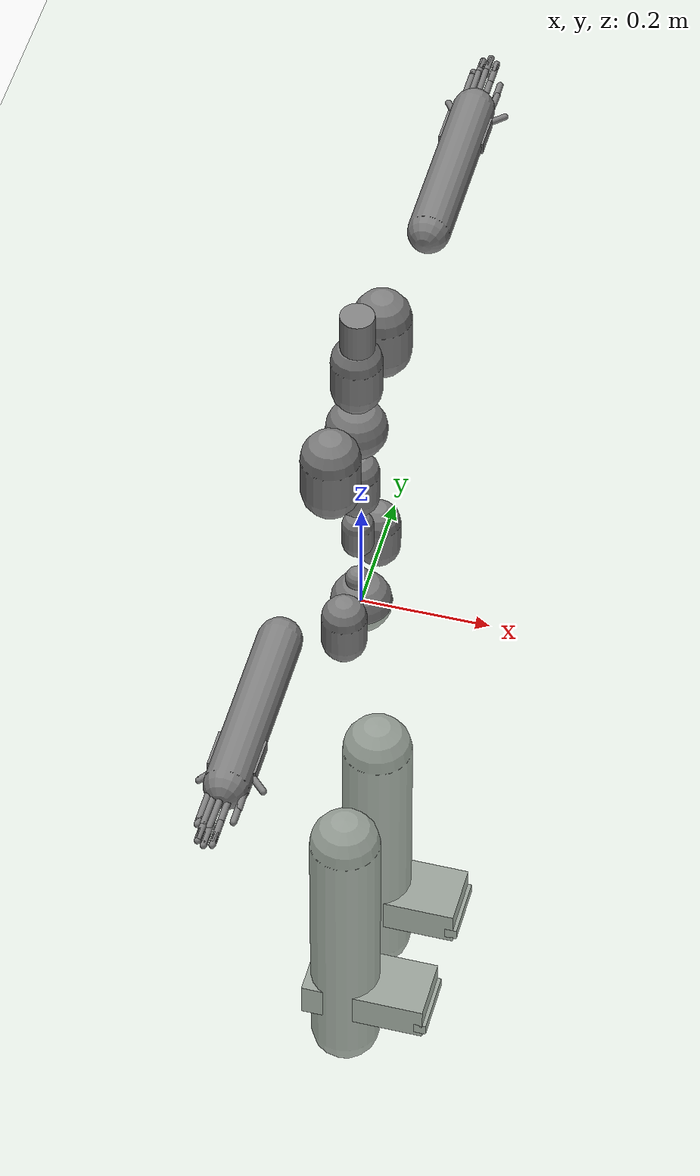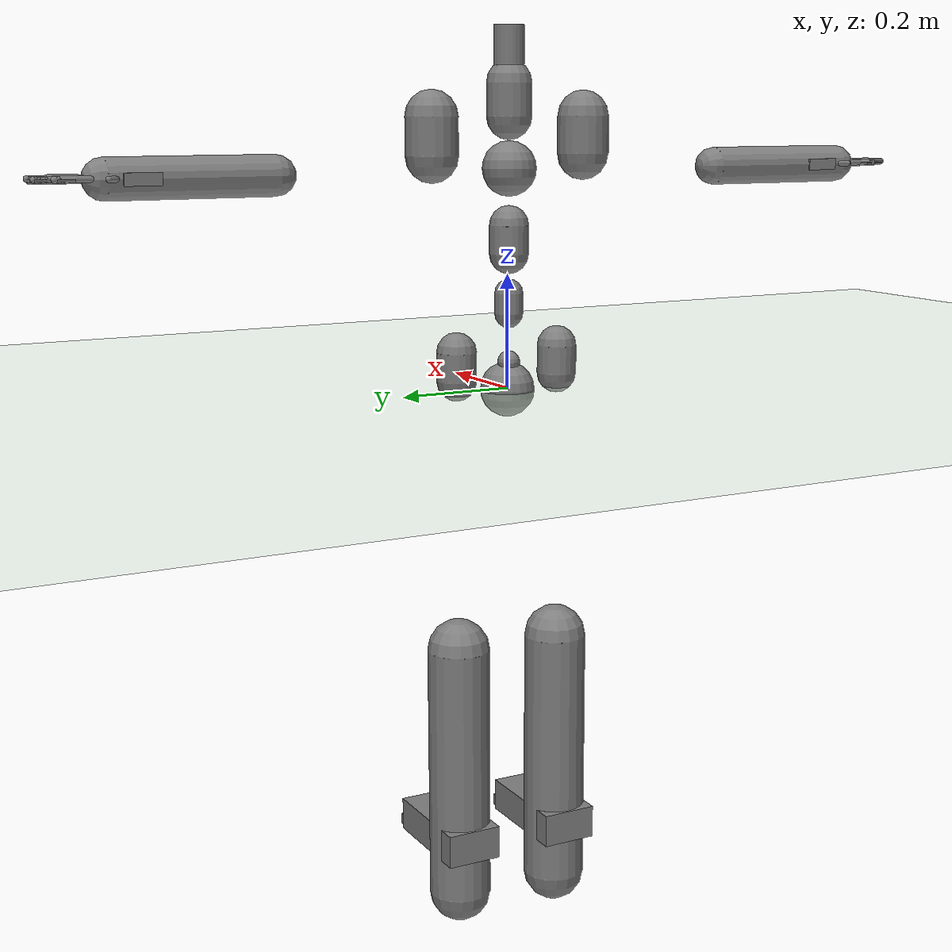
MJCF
<?xml version="1.0" ?>
<mujoco model="humanoid">
  <compiler coordinate="local"/>
  <statistic extent="2" center="0 0 1"/>
  <option timestep="0.00555"/>
  <default>
    <motor ctrlrange="-1 1" ctrllimited="true"/>
    <geom type="capsule" condim="1" friction="1.0 0.05 0.05" solimp=".9 .99 .003" solref=".015 1"/>
    <joint type="hinge" damping="0.1" stiffness="5" armature=".007" limited="true" solimplimit="0 .99 .01"/>
    <site size=".04" group="3"/>
  </default>
  <asset>
    <texture type="skybox" builtin="gradient" rgb1=".4 .5 .6" rgb2="0 0 0" width="100" height="100"/>
    <texture builtin="flat" height="1278" mark="cross" markrgb="1 1 1" name="texgeom" random="0.01" rgb1="0.8 0.6 0.4" rgb2="0.8 0.6 0.4" type="cube" width="127"/>
    <texture builtin="checker" height="100" name="texplane" rgb1="0 0 0" rgb2="0.8 0.8 0.8" type="2d" width="100"/>
    <material name="MatPlane" reflectance="0.5" shininess="1" specular="1" texrepeat="60 60" texture="texplane"/>
    <material name="geom" texture="texgeom" texuniform="true"/>
  </asset>
  <worldbody>
    <light cutoff="100" diffuse="1 1 1" dir="-0 0 -1.3" directional="true" exponent="1" pos="0 0 1.3" specular=".1 .1 .1"/>
    <geom conaffinity="1" condim="3" name="floor" pos="0 0 0" rgba="0.8 0.9 0.8 1" size="100 100 .2" type="plane" material="MatPlane"/>
    <body name="pHipOrigin" pos="0 0 0">
      <freejoint name="pHipOrigin"/>
      <geom type="sphere" contype="1" conaffinity="1" density="4629.6296296296305" size="0.04789" pos="0.0000 0.0000 -0.0000"/>
      <body name="jL5S1" pos="-0.00539612 0 0.04856495">
        <geom type="sphere" contype="1" conaffinity="1" density="1000" size="0.01955" pos="0 0 0"/>
        <joint name="jL5S1_x" type="hinge" pos="0 0 0" axis="1 0 0" stiffness="500" damping="500" armature="0.02" range="-180.0000 180.0000"/>
        <joint name="jL5S1_y" type="hinge" pos="0 0 0" axis="0 1 0" stiffness="500" damping="500" armature="0.02" range="-180.0000 180.0000"/>
        <joint name="jL5S1_z" type="hinge" pos="0 0 0" axis="0 0 1" stiffness="500" damping="500" armature="0.02" range="-180.0000 180.0000"/>
        <body name="jL4L3" pos="0 0 0.07050699">
          <geom type="capsule" contype="1" conaffinity="1" density="1000" fromto="0 0 0.01410 0 0 0.04935" size="0.02468"/>
          <joint name="jL4L3_x" type="hinge" pos="0 0 0" axis="1 0 0" stiffness="500" damping="500" armature="0.02" range="-180.0000 180.0000"/>
          <joint name="jL4L3_y" type="hinge" pos="0 0 0" axis="0 1 0" stiffness="500" damping="500" armature="0.02" range="-180.0000 180.0000"/>
          <joint name="jL4L3_z" type="hinge" pos="0 0 0" axis="0 0 1" stiffness="500" damping="500" armature="0.02" range="-180.0000 180.0000"/>
          <body name="jL1T12" pos="-0.00075170 0 0.09743356">
            <geom type="capsule" contype="1" conaffinity="1" density="1000" fromto="0 0 0.01949 0 0 0.06821" size="0.03410"/>
            <joint name="jL1T12_x" type="hinge" pos="0 0 0" axis="1 0 0" stiffness="500" damping="500" armature="0.02" range="-180.0000 180.0000"/>
            <joint name="jL1T12_y" type="hinge" pos="0 0 0" axis="0 1 0" stiffness="500" damping="500" armature="0.02" range="-180.0000 180.0000"/>
            <joint name="jL1T12_z" type="hinge" pos="0 0 0" axis="0 0 1" stiffness="500" damping="500" armature="0.02" range="-180.0000 180.0000"/>
            <body name="jT9T8" pos="-0.00090596 0 0.11720059">
              <geom type="sphere" contype="1" conaffinity="1" density="1000" size="0.04688" pos="0.000 0.0000 0.046882"/>
              <joint name="jT9T8_x" type="hinge" pos="0 0 0" axis="1 0 0" stiffness="500" damping="500" armature="0.02" range="-180.0000 180.0000"/>
              <joint name="jT9T8_y" type="hinge" pos="0 0 0" axis="0 1 0" stiffness="500" damping="500" armature="0.02" range="-180.0000 180.0000"/>
              <joint name="jT9T8_z" type="hinge" pos="0 0 0" axis="0 0 1" stiffness="500" damping="500" armature="0.02" range="-180.0000 180.0000"/>
              <body name="jT1C7" pos="0 0 0.11110699">
                <geom type="capsule" contype="1" conaffinity="1" density="1000" fromto="0 0 0.02222 0 0 0.07777" size="0.03889"/>
                <joint name="jT1C7_x" type="hinge" pos="0 0 0" axis="1 0 0" stiffness="500" damping="500" armature="0.02" range="-180.0000 180.0000"/>
                <joint name="jT1C7_y" type="hinge" pos="0 0 0" axis="0 1 0" stiffness="500" damping="500" armature="0.02" range="-180.0000 180.0000"/>
                <joint name="jT1C7_z" type="hinge" pos="0 0 0" axis="0 0 1" stiffness="500" damping="500" armature="0.02" range="-180.0000 180.0000"/>
                <body name="jC1Head" pos="0.00101381 0 0.08593361">
                  <geom type="cylinder" contype="1" conaffinity="1" density="1000" fromto="0 0 0 0 0 0.08594" size="0.02578"/>
                  <joint name="jC1Head_x" type="hinge" pos="0 0 0" axis="1 0 0" stiffness="500" damping="500" armature="0.02" range="-180.0000 180.0000"/>
                  <joint name="jC1Head_y" type="hinge" pos="0 0 0" axis="0 1 0" stiffness="500" damping="500" armature="0.02" range="-180.0000 180.0000"/>
                  <joint name="jC1Head_z" type="hinge" pos="0 0 0" axis="0 0 1" stiffness="500" damping="500" armature="0.02" range="-180.0000 180.0000"/>
                </body>
              </body>
              <body name="jRightT4Shoulder" pos="0 -0.01808778 0.04410198">
                <geom type="sphere" contype="1" conaffinity="1" density="1000" size="0.01907" pos="0 0 0"/>
                <joint name="jRightT4Shoulder_x" type="hinge" pos="0 0 0" axis="1 0 0" stiffness="500" damping="500" armature="0.02" range="-180.0000 180.0000"/>
                <joint name="jRightT4Shoulder_y" type="hinge" pos="0 0 0" axis="0 1 0" stiffness="500" damping="500" armature="0.02" range="-180.0000 180.0000"/>
                <joint name="jRightT4Shoulder_z" type="hinge" pos="0 0 0" axis="0 0 1" stiffness="500" damping="500" armature="0.02" range="-180.0000 180.0000"/>
                <body name="jRightShoulder" pos="0 -0.12744974 0">
                  <geom type="capsule" contype="1" conaffinity="1" density="1000" fromto="0 0 0.02549 0 0 0.08921" size="0.04461"/>
                  <joint name="jRightShoulder_x" type="hinge" pos="0 0 0" axis="1 0 0" stiffness="500" damping="500" armature="0.02" range="-180.0000 180.0000"/>
                  <joint name="jRightShoulder_y" type="hinge" pos="0 0 0" axis="0 1 0" stiffness="500" damping="500" armature="0.02" range="-180.0000 180.0000"/>
                  <joint name="jRightShoulder_z" type="hinge" pos="0 0 0" axis="0 0 1" stiffness="500" damping="500" armature="0.02" range="-180.0000 180.0000"/>
                  <body name="jRightElbow" pos="0 -0.27682194 0">
                    <geom type="capsule" contype="1" conaffinity="1" density="1000" fromto="0 0 0 0.00000000 -0.27682194 0.00000000" size="0.03322"/>
                    <joint name="jRightElbow_x" type="hinge" pos="0 0 0" axis="1 0 0" stiffness="500" damping="500" armature="0.02" range="-180.0000 180.0000"/>
                    <joint name="jRightElbow_y" type="hinge" pos="0 0 0" axis="0 1 0" stiffness="500" damping="500" armature="0.02" range="-180.0000 180.0000"/>
                    <joint name="jRightElbow_z" type="hinge" pos="0 0 0" axis="0 0 1" stiffness="500" damping="500" armature="0.02" range="-180.0000 180.0000"/>
                    <body name="jRightWrist" pos="0.00008965 -0.22274684 0">
                      <geom density="1000" type="box" pos="0 0 0" size="0.035 0.03 0.01" quat="1.0000 0.0000 0.0000 0.0000"/>
                      <joint name="jRightWrist_x" type="hinge" pos="0 0 0" axis="1 0 0" stiffness="500" damping="500" armature="0.02" range="-180.0000 180.0000"/>
                      <joint name="jRightWrist_y" type="hinge" pos="0 0 0" axis="0 1 0" stiffness="500" damping="500" armature="0.02" range="-180.0000 180.0000"/>
                      <joint name="jRightWrist_z" type="hinge" pos="0 0 0" axis="0 0 1" stiffness="500" damping="500" armature="0.02" range="-180.0000 180.0000"/>
                      <body name="jRightFirstCMC" pos="0.02569193 -0.02462716 -0.00116349">
                        <geom type="capsule" contype="1" conaffinity="1" density="1000" fromto="0 0 0 0.02569193 -0.02462716 -0.00116349" size="0.005"/>
                        <joint name="jRightFirstCMC_x" type="hinge" pos="0 0 0" axis="1 0 0" stiffness="500" damping="500" armature="0.02" range="-180.0000 180.0000"/>
                        <joint name="jRightFirstCMC_y" type="hinge" pos="0 0 0" axis="0 1 0" stiffness="500" damping="500" armature="0.02" range="-180.0000 180.0000"/>
                        <joint name="jRightFirstCMC_z" type="hinge" pos="0 0 0" axis="0 0 1" stiffness="500" damping="500" armature="0.02" range="-180.0000 180.0000"/>
                        <body name="jRightFirstMCP" pos="0.00114762 -0.03238511 0.00068430">
                          <geom type="capsule" contype="1" conaffinity="1" density="1000" fromto="0 0 0 0.00114762 -0.03238511 0.00068430" size="0.005"/>
                          <joint name="jRightFirstMCP_x" type="hinge" pos="0 0 0" axis="1 0 0" stiffness="500" damping="500" armature="0.02" range="-180.0000 180.0000"/>
                          <joint name="jRightFirstMCP_y" type="hinge" pos="0 0 0" axis="0 1 0" stiffness="500" damping="500" armature="0.02" range="-180.0000 180.0000"/>
                          <joint name="jRightFirstMCP_z" type="hinge" pos="0 0 0" axis="0 0 1" stiffness="500" damping="500" armature="0.02" range="-180.0000 180.0000"/>
                          <body name="jRightIP" pos="0 -0.02849463 0">
                            <geom type="capsule" contype="1" conaffinity="1" density="1000" fromto="0 0 0 0.00000000 -0.02849463 0.00000000" size="0.005"/>
                            <joint name="jRightIP_x" type="hinge" pos="0 0 0" axis="1 0 0" stiffness="500" damping="500" armature="0.02" range="-180.0000 180.0000"/>
                            <joint name="jRightIP_y" type="hinge" pos="0 0 0" axis="0 1 0" stiffness="500" damping="500" armature="0.02" range="-180.0000 180.0000"/>
                            <joint name="jRightIP_z" type="hinge" pos="0 0 0" axis="0 0 1" stiffness="500" damping="500" armature="0.02" range="-180.0000 180.0000"/>
                          </body>
                        </body>
                      </body>
                      <body name="jRightSecondCMC" pos="0.00978196 -0.02857979 -0.00049850">
                        <geom type="capsule" contype="1" conaffinity="1" density="1000" fromto="0 0 0 0.00978196 -0.02857979 -0.00049850" size="0.005"/>
                        <joint name="jRightSecondCMC_x" type="hinge" pos="0 0 0" axis="1 0 0" stiffness="500" damping="500" armature="0.02" range="-180.0000 180.0000"/>
                        <joint name="jRightSecondCMC_y" type="hinge" pos="0 0 0" axis="0 1 0" stiffness="500" damping="500" armature="0.02" range="-180.0000 180.0000"/>
                        <joint name="jRightSecondCMC_z" type="hinge" pos="0 0 0" axis="0 0 1" stiffness="500" damping="500" armature="0.02" range="-180.0000 180.0000"/>
                        <body name="jRightSecondMCP" pos="-0.00032767 -0.05226028 -0.00054211">
                          <geom type="capsule" contype="1" conaffinity="1" density="1000" fromto="0 0 0 -0.00032767 -0.05226028 -0.00054211" size="0.005"/>
                          <joint name="jRightSecondMCP_x" type="hinge" pos="0 0 0" axis="1 0 0" stiffness="500" damping="500" armature="0.02" range="-180.0000 180.0000"/>
                          <joint name="jRightSecondMCP_y" type="hinge" pos="0 0 0" axis="0 1 0" stiffness="500" damping="500" armature="0.02" range="-180.0000 180.0000"/>
                          <joint name="jRightSecondMCP_z" type="hinge" pos="0 0 0" axis="0 0 1" stiffness="500" damping="500" armature="0.02" range="-180.0000 180.0000"/>
                          <body name="jRightSecondPIP" pos="0 -0.03785470 0">
                            <geom type="capsule" contype="1" conaffinity="1" density="1000" fromto="0 0 0 0.00000000 -0.03785470 0.00000000" size="0.005"/>
                            <joint name="jRightSecondPIP_x" type="hinge" pos="0 0 0" axis="1 0 0" stiffness="500" damping="500" armature="0.02" range="-180.0000 180.0000"/>
                            <joint name="jRightSecondPIP_y" type="hinge" pos="0 0 0" axis="0 1 0" stiffness="500" damping="500" armature="0.02" range="-180.0000 180.0000"/>
                            <joint name="jRightSecondPIP_z" type="hinge" pos="0 0 0" axis="0 0 1" stiffness="500" damping="500" armature="0.02" range="-180.0000 180.0000"/>
                            <body name="jRightSecondDIP" pos="0 -0.02065061 0">
                              <geom type="capsule" contype="1" conaffinity="1" density="1000" fromto="0 0 0 0.00000000 -0.02065061 0.00000000" size="0.005"/>
                              <joint name="jRightSecondDIP_x" type="hinge" pos="0 0 0" axis="1 0 0" stiffness="500" damping="500" armature="0.02" range="-180.0000 180.0000"/>
                              <joint name="jRightSecondDIP_y" type="hinge" pos="0 0 0" axis="0 1 0" stiffness="500" damping="500" armature="0.02" range="-180.0000 180.0000"/>
                              <joint name="jRightSecondDIP_z" type="hinge" pos="0 0 0" axis="0 0 1" stiffness="500" damping="500" armature="0.02" range="-180.0000 180.0000"/>
                            </body>
                          </body>
                        </body>
                      </body>
                      <body name="jRightThirdCMC" pos="-0.00061072 -0.03302631 0.00138848">
                        <geom type="capsule" contype="1" conaffinity="1" density="1000" fromto="0 0 0 -0.00061072 -0.03302631 0.00138848" size="0.005"/>
                        <joint name="jRightThirdCMC_x" type="hinge" pos="0 0 0" axis="1 0 0" stiffness="500" damping="500" armature="0.02" range="-180.0000 180.0000"/>
                        <joint name="jRightThirdCMC_y" type="hinge" pos="0 0 0" axis="0 1 0" stiffness="500" damping="500" armature="0.02" range="-180.0000 180.0000"/>
                        <joint name="jRightThirdCMC_z" type="hinge" pos="0 0 0" axis="0 0 1" stiffness="500" damping="500" armature="0.02" range="-180.0000 180.0000"/>
                        <body name="jRightThirdMCP" pos="-0.00061190 -0.05069596 0.00137924">
                          <geom type="capsule" contype="1" conaffinity="1" density="1000" fromto="0 0 0 -0.00061190 -0.05069596 0.00137924" size="0.005"/>
                          <joint name="jRightThirdMCP_x" type="hinge" pos="0 0 0" axis="1 0 0" stiffness="500" damping="500" armature="0.02" range="-180.0000 180.0000"/>
                          <joint name="jRightThirdMCP_y" type="hinge" pos="0 0 0" axis="0 1 0" stiffness="500" damping="500" armature="0.02" range="-180.0000 180.0000"/>
                          <joint name="jRightThirdMCP_z" type="hinge" pos="0 0 0" axis="0 0 1" stiffness="500" damping="500" armature="0.02" range="-180.0000 180.0000"/>
                          <body name="jRightThirdPIP" pos="0 -0.04145038 0">
                            <geom type="capsule" contype="1" conaffinity="1" density="1000" fromto="0 0 0 0.00000000 -0.04145038 0.00000000" size="0.005"/>
                            <joint name="jRightThirdPIP_x" type="hinge" pos="0 0 0" axis="1 0 0" stiffness="500" damping="500" armature="0.02" range="-180.0000 180.0000"/>
                            <joint name="jRightThirdPIP_y" type="hinge" pos="0 0 0" axis="0 1 0" stiffness="500" damping="500" armature="0.02" range="-180.0000 180.0000"/>
                            <joint name="jRightThirdPIP_z" type="hinge" pos="0 0 0" axis="0 0 1" stiffness="500" damping="500" armature="0.02" range="-180.0000 180.0000"/>
                            <body name="jRightThirdDIP" pos="0 -0.01991758 0">
                              <geom type="capsule" contype="1" conaffinity="1" density="1000" fromto="0 0 0 0.00000000 -0.01991758 0.00000000" size="0.005"/>
                              <joint name="jRightThirdDIP_x" type="hinge" pos="0 0 0" axis="1 0 0" stiffness="500" damping="500" armature="0.02" range="-180.0000 180.0000"/>
                              <joint name="jRightThirdDIP_y" type="hinge" pos="0 0 0" axis="0 1 0" stiffness="500" damping="500" armature="0.02" range="-180.0000 180.0000"/>
                              <joint name="jRightThirdDIP_z" type="hinge" pos="0 0 0" axis="0 0 1" stiffness="500" damping="500" armature="0.02" range="-180.0000 180.0000"/>
                            </body>
                          </body>
                        </body>
                      </body>
                      <body name="jRightFourthCMC" pos="-0.01124740 -0.03132588 0.00073736">
                        <geom type="capsule" contype="1" conaffinity="1" density="1000" fromto="0 0 0 -0.01124740 -0.03132588 0.00073736" size="0.005"/>
                        <joint name="jRightFourthCMC_x" type="hinge" pos="0 0 0" axis="1 0 0" stiffness="500" damping="500" armature="0.02" range="-180.0000 180.0000"/>
                        <joint name="jRightFourthCMC_y" type="hinge" pos="0 0 0" axis="0 1 0" stiffness="500" damping="500" armature="0.02" range="-180.0000 180.0000"/>
                        <joint name="jRightFourthCMC_z" type="hinge" pos="0 0 0" axis="0 0 1" stiffness="500" damping="500" armature="0.02" range="-180.0000 180.0000"/>
                        <body name="jRightFourthMCP" pos="-0.00035896 -0.04919920 0.00077296">
                          <geom type="capsule" contype="1" conaffinity="1" density="1000" fromto="0 0 0 -0.00035896 -0.04919920 0.00077296" size="0.005"/>
                          <joint name="jRightFourthMCP_x" type="hinge" pos="0 0 0" axis="1 0 0" stiffness="500" damping="500" armature="0.02" range="-180.0000 180.0000"/>
                          <joint name="jRightFourthMCP_y" type="hinge" pos="0 0 0" axis="0 1 0" stiffness="500" damping="500" armature="0.02" range="-180.0000 180.0000"/>
                          <joint name="jRightFourthMCP_z" type="hinge" pos="0 0 0" axis="0 0 1" stiffness="500" damping="500" armature="0.02" range="-180.0000 180.0000"/>
                          <body name="jRightFourthPIP" pos="0 -0.03932637 0">
                            <geom type="capsule" contype="1" conaffinity="1" density="1000" fromto="0 0 0 0.00000000 -0.03932637 0.00000000" size="0.005"/>
                            <joint name="jRightFourthPIP_x" type="hinge" pos="0 0 0" axis="1 0 0" stiffness="500" damping="500" armature="0.02" range="-180.0000 180.0000"/>
                            <joint name="jRightFourthPIP_y" type="hinge" pos="0 0 0" axis="0 1 0" stiffness="500" damping="500" armature="0.02" range="-180.0000 180.0000"/>
                            <joint name="jRightFourthPIP_z" type="hinge" pos="0 0 0" axis="0 0 1" stiffness="500" damping="500" armature="0.02" range="-180.0000 180.0000"/>
                            <body name="jRightFourthDIP" pos="0 -0.01977272 0">
                              <geom type="capsule" contype="1" conaffinity="1" density="1000" fromto="0 0 0 0.00000000 -0.01977272 0.00000000" size="0.005"/>
                              <joint name="jRightFourthDIP_x" type="hinge" pos="0 0 0" axis="1 0 0" stiffness="500" damping="500" armature="0.02" range="-180.0000 180.0000"/>
                              <joint name="jRightFourthDIP_y" type="hinge" pos="0 0 0" axis="0 1 0" stiffness="500" damping="500" armature="0.02" range="-180.0000 180.0000"/>
                              <joint name="jRightFourthDIP_z" type="hinge" pos="0 0 0" axis="0 0 1" stiffness="500" damping="500" armature="0.02" range="-180.0000 180.0000"/>
                            </body>
                          </body>
                        </body>
                      </body>
                      <body name="jRightFifthCMC" pos="-0.01980955 -0.02760235 0.00054451">
                        <geom type="capsule" contype="1" conaffinity="1" density="1000" fromto="0 0 0 -0.01980955 -0.02760235 0.00054451" size="0.005"/>
                        <joint name="jRightFifthCMC_x" type="hinge" pos="0 0 0" axis="1 0 0" stiffness="500" damping="500" armature="0.02" range="-180.0000 180.0000"/>
                        <joint name="jRightFifthCMC_y" type="hinge" pos="0 0 0" axis="0 1 0" stiffness="500" damping="500" armature="0.02" range="-180.0000 180.0000"/>
                        <joint name="jRightFifthCMC_z" type="hinge" pos="0 0 0" axis="0 0 1" stiffness="500" damping="500" armature="0.02" range="-180.0000 180.0000"/>
                        <body name="jRightFifthMCP" pos="-0.00000690 -0.04672116 0.00064294">
                          <geom type="capsule" contype="1" conaffinity="1" density="1000" fromto="0 0 0 -0.00000690 -0.04672116 0.00064294" size="0.005"/>
                          <joint name="jRightFifthMCP_x" type="hinge" pos="0 0 0" axis="1 0 0" stiffness="500" damping="500" armature="0.02" range="-180.0000 180.0000"/>
                          <joint name="jRightFifthMCP_y" type="hinge" pos="0 0 0" axis="0 1 0" stiffness="500" damping="500" armature="0.02" range="-180.0000 180.0000"/>
                          <joint name="jRightFifthMCP_z" type="hinge" pos="0 0 0" axis="0 0 1" stiffness="500" damping="500" armature="0.02" range="-180.0000 180.0000"/>
                          <body name="jRightFifthPIP" pos="0 -0.02657274 0">
                            <geom type="capsule" contype="1" conaffinity="1" density="1000" fromto="0 0 0 0.00000000 -0.02657274 0.00000000" size="0.005"/>
                            <joint name="jRightFifthPIP_x" type="hinge" pos="0 0 0" axis="1 0 0" stiffness="500" damping="500" armature="0.02" range="-180.0000 180.0000"/>
                            <joint name="jRightFifthPIP_y" type="hinge" pos="0 0 0" axis="0 1 0" stiffness="500" damping="500" armature="0.02" range="-180.0000 180.0000"/>
                            <joint name="jRightFifthPIP_z" type="hinge" pos="0 0 0" axis="0 0 1" stiffness="500" damping="500" armature="0.02" range="-180.0000 180.0000"/>
                            <body name="jRightFifthDIP" pos="0 -0.01515239 0">
                              <geom type="capsule" contype="1" conaffinity="1" density="1000" fromto="0 0 0 0.00000000 -0.01515239 0.00000000" size="0.005"/>
                              <joint name="jRightFifthDIP_x" type="hinge" pos="0 0 0" axis="1 0 0" stiffness="500" damping="500" armature="0.02" range="-180.0000 180.0000"/>
                              <joint name="jRightFifthDIP_y" type="hinge" pos="0 0 0" axis="0 1 0" stiffness="500" damping="500" armature="0.02" range="-180.0000 180.0000"/>
                              <joint name="jRightFifthDIP_z" type="hinge" pos="0 0 0" axis="0 0 1" stiffness="500" damping="500" armature="0.02" range="-180.0000 180.0000"/>
                            </body>
                          </body>
                        </body>
                      </body>
                    </body>
                  </body>
                </body>
              </body>
              <body name="jLeftT4Shoulder" pos="0 0.01802158 0.04394058">
                <geom type="sphere" contype="1" conaffinity="1" density="1000" size="0.01900" pos="0 0 0"/>
                <joint name="jLeftT4Shoulder_x" type="hinge" pos="0 0 0" axis="1 0 0" stiffness="500" damping="500" armature="0.02" range="-180.0000 180.0000"/>
                <joint name="jLeftT4Shoulder_y" type="hinge" pos="0 0 0" axis="0 1 0" stiffness="500" damping="500" armature="0.02" range="-180.0000 180.0000"/>
                <joint name="jLeftT4Shoulder_z" type="hinge" pos="0 0 0" axis="0 0 1" stiffness="500" damping="500" armature="0.02" range="-180.0000 180.0000"/>
                <body name="jLeftShoulder" pos="0 0.12796123 0">
                  <geom type="capsule" contype="1" conaffinity="1" density="1000" fromto="0 0 0.02559 0 0 0.08957" size="0.04479"/>
                  <joint name="jLeftShoulder_x" type="hinge" pos="0 0 0" axis="1 0 0" stiffness="500" damping="500" armature="0.02" range="-180.0000 180.0000"/>
                  <joint name="jLeftShoulder_y" type="hinge" pos="0 0 0" axis="0 1 0" stiffness="500" damping="500" armature="0.02" range="-180.0000 180.0000"/>
                  <joint name="jLeftShoulder_z" type="hinge" pos="0 0 0" axis="0 0 1" stiffness="500" damping="500" armature="0.02" range="-180.0000 180.0000"/>
                  <body name="jLeftElbow" pos="0 0.27616146 0">
                    <geom type="capsule" contype="1" conaffinity="1" density="1000" fromto="0 0 0 0.00000000 0.27616146 0.00000000" size="0.03314"/>
                    <joint name="jLeftElbow_x" type="hinge" pos="0 0 0" axis="1 0 0" stiffness="500" damping="500" armature="0.02" range="-180.0000 180.0000"/>
                    <joint name="jLeftElbow_y" type="hinge" pos="0 0 0" axis="0 1 0" stiffness="500" damping="500" armature="0.02" range="-180.0000 180.0000"/>
                    <joint name="jLeftElbow_z" type="hinge" pos="0 0 0" axis="0 0 1" stiffness="500" damping="500" armature="0.02" range="-180.0000 180.0000"/>
                    <body name="jLeftWrist" pos="0.00009028 0.22430267 0">
                      <geom density="1000" type="box" pos="0 0 0" size="0.035 0.03 0.01" quat="1.0000 0.0000 0.0000 0.0000"/>
                      <joint name="jLeftWrist_x" type="hinge" pos="0 0 0" axis="1 0 0" stiffness="500" damping="500" armature="0.02" range="-180.0000 180.0000"/>
                      <joint name="jLeftWrist_y" type="hinge" pos="0 0 0" axis="0 1 0" stiffness="500" damping="500" armature="0.02" range="-180.0000 180.0000"/>
                      <joint name="jLeftWrist_z" type="hinge" pos="0 0 0" axis="0 0 1" stiffness="500" damping="500" armature="0.02" range="-180.0000 180.0000"/>
                      <body name="jLeftFirstCMC" pos="0.02514635 0.02520573 -0.00112547">
                        <geom type="capsule" contype="1" conaffinity="1" density="1000" fromto="0 0 0 0.02514635 0.02520573 -0.00112547" size="0.005"/>
                        <joint name="jLeftFirstCMC_x" type="hinge" pos="0 0 0" axis="1 0 0" stiffness="500" damping="500" armature="0.02" range="-180.0000 180.0000"/>
                        <joint name="jLeftFirstCMC_y" type="hinge" pos="0 0 0" axis="0 1 0" stiffness="500" damping="500" armature="0.02" range="-180.0000 180.0000"/>
                        <joint name="jLeftFirstCMC_z" type="hinge" pos="0 0 0" axis="0 0 1" stiffness="500" damping="500" armature="0.02" range="-180.0000 180.0000"/>
                        <body name="jLeftFirstMCP" pos="0.00113657 0.03238438 0.00066687">
                          <geom type="capsule" contype="1" conaffinity="1" density="1000" fromto="0 0 0 0.00113657 0.03238438 0.00066687" size="0.005"/>
                          <joint name="jLeftFirstMCP_x" type="hinge" pos="0 0 0" axis="1 0 0" stiffness="500" damping="500" armature="0.02" range="-180.0000 180.0000"/>
                          <joint name="jLeftFirstMCP_y" type="hinge" pos="0 0 0" axis="0 1 0" stiffness="500" damping="500" armature="0.02" range="-180.0000 180.0000"/>
                          <joint name="jLeftFirstMCP_z" type="hinge" pos="0 0 0" axis="0 0 1" stiffness="500" damping="500" armature="0.02" range="-180.0000 180.0000"/>
                          <body name="jLeftIP" pos="0 0.02849463 0">
                            <geom type="capsule" contype="1" conaffinity="1" density="1000" fromto="0 0 0 0.00000000 0.02849463 0.00000000" size="0.005"/>
                            <joint name="jLeftIP_x" type="hinge" pos="0 0 0" axis="1 0 0" stiffness="500" damping="500" armature="0.02" range="-180.0000 180.0000"/>
                            <joint name="jLeftIP_y" type="hinge" pos="0 0 0" axis="0 1 0" stiffness="500" damping="500" armature="0.02" range="-180.0000 180.0000"/>
                            <joint name="jLeftIP_z" type="hinge" pos="0 0 0" axis="0 0 1" stiffness="500" damping="500" armature="0.02" range="-180.0000 180.0000"/>
                          </body>
                        </body>
                      </body>
                      <body name="jLeftSecondCMC" pos="0.00989463 0.02852721 -0.00050262">
                        <geom type="capsule" contype="1" conaffinity="1" density="1000" fromto="0 0 0 0.00989463 0.02852721 -0.00050262" size="0.005"/>
                        <joint name="jLeftSecondCMC_x" type="hinge" pos="0 0 0" axis="1 0 0" stiffness="500" damping="500" armature="0.02" range="-180.0000 180.0000"/>
                        <joint name="jLeftSecondCMC_y" type="hinge" pos="0 0 0" axis="0 1 0" stiffness="500" damping="500" armature="0.02" range="-180.0000 180.0000"/>
                        <joint name="jLeftSecondCMC_z" type="hinge" pos="0 0 0" axis="0 0 1" stiffness="500" damping="500" armature="0.02" range="-180.0000 180.0000"/>
                        <body name="jLeftSecondMCP" pos="-0.00028570 0.05226136 -0.00054881">
                          <geom type="capsule" contype="1" conaffinity="1" density="1000" fromto="0 0 0 -0.00028570 0.05226136 -0.00054881" size="0.005"/>
                          <joint name="jLeftSecondMCP_x" type="hinge" pos="0 0 0" axis="1 0 0" stiffness="500" damping="500" armature="0.02" range="-180.0000 180.0000"/>
                          <joint name="jLeftSecondMCP_y" type="hinge" pos="0 0 0" axis="0 1 0" stiffness="500" damping="500" armature="0.02" range="-180.0000 180.0000"/>
                          <joint name="jLeftSecondMCP_z" type="hinge" pos="0 0 0" axis="0 0 1" stiffness="500" damping="500" armature="0.02" range="-180.0000 180.0000"/>
                          <body name="jLeftSecondPIP" pos="0 0.03785470 0">
                            <geom type="capsule" contype="1" conaffinity="1" density="1000" fromto="0 0 0 0.00000000 0.03785470 0.00000000" size="0.005"/>
                            <joint name="jLeftSecondPIP_x" type="hinge" pos="0 0 0" axis="1 0 0" stiffness="500" damping="500" armature="0.02" range="-180.0000 180.0000"/>
                            <joint name="jLeftSecondPIP_y" type="hinge" pos="0 0 0" axis="0 1 0" stiffness="500" damping="500" armature="0.02" range="-180.0000 180.0000"/>
                            <joint name="jLeftSecondPIP_z" type="hinge" pos="0 0 0" axis="0 0 1" stiffness="500" damping="500" armature="0.02" range="-180.0000 180.0000"/>
                            <body name="jLeftSecondDIP" pos="0 0.02065061 0">
                              <geom type="capsule" contype="1" conaffinity="1" density="1000" fromto="0 0 0 0.00000000 0.02065061 0.00000000" size="0.005"/>
                              <joint name="jLeftSecondDIP_x" type="hinge" pos="0 0 0" axis="1 0 0" stiffness="500" damping="500" armature="0.02" range="-180.0000 180.0000"/>
                              <joint name="jLeftSecondDIP_y" type="hinge" pos="0 0 0" axis="0 1 0" stiffness="500" damping="500" armature="0.02" range="-180.0000 180.0000"/>
                              <joint name="jLeftSecondDIP_z" type="hinge" pos="0 0 0" axis="0 0 1" stiffness="500" damping="500" armature="0.02" range="-180.0000 180.0000"/>
                            </body>
                          </body>
                        </body>
                      </body>
                      <body name="jLeftThirdCMC" pos="-0.00061431 0.03302927 0.00134219">
                        <geom type="capsule" contype="1" conaffinity="1" density="1000" fromto="0 0 0 -0.00061431 0.03302927 0.00134219" size="0.005"/>
                        <joint name="jLeftThirdCMC_x" type="hinge" pos="0 0 0" axis="1 0 0" stiffness="500" damping="500" armature="0.02" range="-180.0000 180.0000"/>
                        <joint name="jLeftThirdCMC_y" type="hinge" pos="0 0 0" axis="0 1 0" stiffness="500" damping="500" armature="0.02" range="-180.0000 180.0000"/>
                        <joint name="jLeftThirdCMC_z" type="hinge" pos="0 0 0" axis="0 0 1" stiffness="500" damping="500" armature="0.02" range="-180.0000 180.0000"/>
                        <body name="jLeftThirdMCP" pos="-0.00061684 0.05069694 0.00135151">
                          <geom type="capsule" contype="1" conaffinity="1" density="1000" fromto="0 0 0 -0.00061684 0.05069694 0.00135151" size="0.005"/>
                          <joint name="jLeftThirdMCP_x" type="hinge" pos="0 0 0" axis="1 0 0" stiffness="500" damping="500" armature="0.02" range="-180.0000 180.0000"/>
                          <joint name="jLeftThirdMCP_y" type="hinge" pos="0 0 0" axis="0 1 0" stiffness="500" damping="500" armature="0.02" range="-180.0000 180.0000"/>
                          <joint name="jLeftThirdMCP_z" type="hinge" pos="0 0 0" axis="0 0 1" stiffness="500" damping="500" armature="0.02" range="-180.0000 180.0000"/>
                          <body name="jLeftThirdPIP" pos="0 0.04145038 0">
                            <geom type="capsule" contype="1" conaffinity="1" density="1000" fromto="0 0 0 0.00000000 0.04145038 0.00000000" size="0.005"/>
                            <joint name="jLeftThirdPIP_x" type="hinge" pos="0 0 0" axis="1 0 0" stiffness="500" damping="500" armature="0.02" range="-180.0000 180.0000"/>
                            <joint name="jLeftThirdPIP_y" type="hinge" pos="0 0 0" axis="0 1 0" stiffness="500" damping="500" armature="0.02" range="-180.0000 180.0000"/>
                            <joint name="jLeftThirdPIP_z" type="hinge" pos="0 0 0" axis="0 0 1" stiffness="500" damping="500" armature="0.02" range="-180.0000 180.0000"/>
                            <body name="jLeftThirdDIP" pos="0 0.01991758 0">
                              <geom type="capsule" contype="1" conaffinity="1" density="1000" fromto="0 0 0 0.00000000 0.01991758 0.00000000" size="0.005"/>
                              <joint name="jLeftThirdDIP_x" type="hinge" pos="0 0 0" axis="1 0 0" stiffness="500" damping="500" armature="0.02" range="-180.0000 180.0000"/>
                              <joint name="jLeftThirdDIP_y" type="hinge" pos="0 0 0" axis="0 1 0" stiffness="500" damping="500" armature="0.02" range="-180.0000 180.0000"/>
                              <joint name="jLeftThirdDIP_z" type="hinge" pos="0 0 0" axis="0 0 1" stiffness="500" damping="500" armature="0.02" range="-180.0000 180.0000"/>
                            </body>
                          </body>
                        </body>
                      </body>
                      <body name="jLeftFourthCMC" pos="-0.01166011 0.03116564 0.00078713">
                        <geom type="capsule" contype="1" conaffinity="1" density="1000" fromto="0 0 0 -0.01166011 0.03116564 0.00078713" size="0.005"/>
                        <joint name="jLeftFourthCMC_x" type="hinge" pos="0 0 0" axis="1 0 0" stiffness="500" damping="500" armature="0.02" range="-180.0000 180.0000"/>
                        <joint name="jLeftFourthCMC_y" type="hinge" pos="0 0 0" axis="0 1 0" stiffness="500" damping="500" armature="0.02" range="-180.0000 180.0000"/>
                        <joint name="jLeftFourthCMC_z" type="hinge" pos="0 0 0" axis="0 0 1" stiffness="500" damping="500" armature="0.02" range="-180.0000 180.0000"/>
                        <body name="jLeftFourthMCP" pos="-0.00038603 0.04919638 0.00081749">
                          <geom type="capsule" contype="1" conaffinity="1" density="1000" fromto="0 0 0 -0.00038603 0.04919638 0.00081749" size="0.005"/>
                          <joint name="jLeftFourthMCP_x" type="hinge" pos="0 0 0" axis="1 0 0" stiffness="500" damping="500" armature="0.02" range="-180.0000 180.0000"/>
                          <joint name="jLeftFourthMCP_y" type="hinge" pos="0 0 0" axis="0 1 0" stiffness="500" damping="500" armature="0.02" range="-180.0000 180.0000"/>
                          <joint name="jLeftFourthMCP_z" type="hinge" pos="0 0 0" axis="0 0 1" stiffness="500" damping="500" armature="0.02" range="-180.0000 180.0000"/>
                          <body name="jLeftFourthPIP" pos="0 0.03932637 0">
                            <geom type="capsule" contype="1" conaffinity="1" density="1000" fromto="0 0 0 0.00000000 0.03932637 0.00000000" size="0.005"/>
                            <joint name="jLeftFourthPIP_x" type="hinge" pos="0 0 0" axis="1 0 0" stiffness="500" damping="500" armature="0.02" range="-180.0000 180.0000"/>
                            <joint name="jLeftFourthPIP_y" type="hinge" pos="0 0 0" axis="0 1 0" stiffness="500" damping="500" armature="0.02" range="-180.0000 180.0000"/>
                            <joint name="jLeftFourthPIP_z" type="hinge" pos="0 0 0" axis="0 0 1" stiffness="500" damping="500" armature="0.02" range="-180.0000 180.0000"/>
                            <body name="jLeftFourthDIP" pos="0 0.01977272 0">
                              <geom type="capsule" contype="1" conaffinity="1" density="1000" fromto="0 0 0 0.00000000 0.01977272 0.00000000" size="0.005"/>
                              <joint name="jLeftFourthDIP_x" type="hinge" pos="0 0 0" axis="1 0 0" stiffness="500" damping="500" armature="0.02" range="-180.0000 180.0000"/>
                              <joint name="jLeftFourthDIP_y" type="hinge" pos="0 0 0" axis="0 1 0" stiffness="500" damping="500" armature="0.02" range="-180.0000 180.0000"/>
                              <joint name="jLeftFourthDIP_z" type="hinge" pos="0 0 0" axis="0 0 1" stiffness="500" damping="500" armature="0.02" range="-180.0000 180.0000"/>
                            </body>
                          </body>
                        </body>
                      </body>
                      <body name="jLeftFifthCMC" pos="-0.02040966 0.02716598 0.00055326">
                        <geom type="capsule" contype="1" conaffinity="1" density="1000" fromto="0 0 0 -0.02040966 0.02716598 0.00055326" size="0.005"/>
                        <joint name="jLeftFifthCMC_x" type="hinge" pos="0 0 0" axis="1 0 0" stiffness="500" damping="500" armature="0.02" range="-180.0000 180.0000"/>
                        <joint name="jLeftFifthCMC_y" type="hinge" pos="0 0 0" axis="0 1 0" stiffness="500" damping="500" armature="0.02" range="-180.0000 180.0000"/>
                        <joint name="jLeftFifthCMC_z" type="hinge" pos="0 0 0" axis="0 0 1" stiffness="500" damping="500" armature="0.02" range="-180.0000 180.0000"/>
                        <body name="jLeftFifthMCP" pos="-0.00001325 0.04671989 0.00067227">
                          <geom type="capsule" contype="1" conaffinity="1" density="1000" fromto="0 0 0 -0.00001325 0.04671989 0.00067227" size="0.005"/>
                          <joint name="jLeftFifthMCP_x" type="hinge" pos="0 0 0" axis="1 0 0" stiffness="500" damping="500" armature="0.02" range="-180.0000 180.0000"/>
                          <joint name="jLeftFifthMCP_y" type="hinge" pos="0 0 0" axis="0 1 0" stiffness="500" damping="500" armature="0.02" range="-180.0000 180.0000"/>
                          <joint name="jLeftFifthMCP_z" type="hinge" pos="0 0 0" axis="0 0 1" stiffness="500" damping="500" armature="0.02" range="-180.0000 180.0000"/>
                          <body name="jLeftFifthPIP" pos="0 0.02657274 0">
                            <geom type="capsule" contype="1" conaffinity="1" density="1000" fromto="0 0 0 0.00000000 0.02657274 0.00000000" size="0.005"/>
                            <joint name="jLeftFifthPIP_x" type="hinge" pos="0 0 0" axis="1 0 0" stiffness="500" damping="500" armature="0.02" range="-180.0000 180.0000"/>
                            <joint name="jLeftFifthPIP_y" type="hinge" pos="0 0 0" axis="0 1 0" stiffness="500" damping="500" armature="0.02" range="-180.0000 180.0000"/>
                            <joint name="jLeftFifthPIP_z" type="hinge" pos="0 0 0" axis="0 0 1" stiffness="500" damping="500" armature="0.02" range="-180.0000 180.0000"/>
                            <body name="jLeftFifthDIP" pos="0 0.01515239 0">
                              <geom type="capsule" contype="1" conaffinity="1" density="1000" fromto="0 0 0 0.00000000 0.01515239 0.00000000" size="0.005"/>
                              <joint name="jLeftFifthDIP_x" type="hinge" pos="0 0 0" axis="1 0 0" stiffness="500" damping="500" armature="0.02" range="-180.0000 180.0000"/>
                              <joint name="jLeftFifthDIP_y" type="hinge" pos="0 0 0" axis="0 1 0" stiffness="500" damping="500" armature="0.02" range="-180.0000 180.0000"/>
                              <joint name="jLeftFifthDIP_z" type="hinge" pos="0 0 0" axis="0 0 1" stiffness="500" damping="500" armature="0.02" range="-180.0000 180.0000"/>
                            </body>
                          </body>
                        </body>
                      </body>
                    </body>
                  </body>
                </body>
              </body>
            </body>
          </body>
        </body>
      </body>
      <body name="jRightHip" pos="-0.00016720 -0.09922391 0.00150520">
        <geom type="capsule" contype="1" conaffinity="1" density="1000" fromto="0 0 0.01985 0 0 0.06946" size="0.03473"/>
        <joint name="jRightHip_x" type="hinge" pos="0 0 0" axis="1 0 0" stiffness="500" damping="500" armature="0.02" range="-180.0000 180.0000"/>
        <joint name="jRightHip_y" type="hinge" pos="0 0 0" axis="0 1 0" stiffness="500" damping="500" armature="0.02" range="-180.0000 180.0000"/>
        <joint name="jRightHip_z" type="hinge" pos="0 0 0" axis="0 0 1" stiffness="500" damping="500" armature="0.02" range="-180.0000 180.0000"/>
        <body name="jRightKnee" pos="0.00005580 0 -0.46802497">
          <geom type="capsule" contype="1" conaffinity="1" density="1000" fromto="0 0 0 0.00005580 0.00000000 -0.46802497" size="0.05616"/>
          <joint name="jRightKnee_x" type="hinge" pos="0 0 0" axis="1 0 0" stiffness="500" damping="500" armature="0.02" range="-180.0000 180.0000"/>
          <joint name="jRightKnee_y" type="hinge" pos="0 0 0" axis="0 1 0" stiffness="500" damping="500" armature="0.02" range="-180.0000 180.0000"/>
          <joint name="jRightKnee_z" type="hinge" pos="0 0 0" axis="0 0 1" stiffness="500" damping="500" armature="0.02" range="-180.0000 180.0000"/>
          <body name="jRightAnkle" pos="0.00037136 0 -0.32888177">
            <geom density="1000" type="box" pos="0.04 0. -0.03" size="0.1 0.05 0.03" quat="1.0 0 0 0"/>
            <joint name="jRightAnkle_x" type="hinge" pos="0 0 0" axis="1 0 0" stiffness="500" damping="500" armature="0.02" range="-180.0000 180.0000"/>
            <joint name="jRightAnkle_y" type="hinge" pos="0 0 0" axis="0 1 0" stiffness="500" damping="500" armature="0.02" range="-180.0000 180.0000"/>
            <joint name="jRightAnkle_z" type="hinge" pos="0 0 0" axis="0 0 1" stiffness="500" damping="500" armature="0.02" range="-180.0000 180.0000"/>
            <body name="jRightBallFoot" pos="0.13607024 0 -0.06242373">
              <geom density="1000" type="box" pos="0 0 0.02" size="0.01 0.05 0.01" quat="1.0 0 0 0"/>
              <joint name="jRightBallFoot_x" type="hinge" pos="0 0 0" axis="1 0 0" stiffness="500" damping="500" armature="0.02" range="-180.0000 180.0000"/>
              <joint name="jRightBallFoot_y" type="hinge" pos="0 0 0" axis="0 1 0" stiffness="500" damping="500" armature="0.02" range="-180.0000 180.0000"/>
              <joint name="jRightBallFoot_z" type="hinge" pos="0 0 0" axis="0 0 1" stiffness="500" damping="500" armature="0.02" range="-180.0000 180.0000"/>
            </body>
          </body>
        </body>
      </body>
      <body name="jLeftHip" pos="-0.00016520 0.09931818 0.00148670">
        <geom type="capsule" contype="1" conaffinity="1" density="1000" fromto="0 0 0.01987 0 0 0.06953" size="0.03477"/>
        <joint name="jLeftHip_x" type="hinge" pos="0 0 0" axis="1 0 0" stiffness="500" damping="500" armature="0.02" range="-180.0000 180.0000"/>
        <joint name="jLeftHip_y" type="hinge" pos="0 0 0" axis="0 1 0" stiffness="500" damping="500" armature="0.02" range="-180.0000 180.0000"/>
        <joint name="jLeftHip_z" type="hinge" pos="0 0 0" axis="0 0 1" stiffness="500" damping="500" armature="0.02" range="-180.0000 180.0000"/>
        <body name="jLeftKnee" pos="0.00005561 0 -0.46639624">
          <geom type="capsule" contype="1" conaffinity="1" density="1000" fromto="0 0 0 0.00005561 0.00000000 -0.46639624" size="0.05597"/>
          <joint name="jLeftKnee_x" type="hinge" pos="0 0 0" axis="1 0 0" stiffness="500" damping="500" armature="0.02" range="-180.0000 180.0000"/>
          <joint name="jLeftKnee_y" type="hinge" pos="0 0 0" axis="0 1 0" stiffness="500" damping="500" armature="0.02" range="-180.0000 180.0000"/>
          <joint name="jLeftKnee_z" type="hinge" pos="0 0 0" axis="0 0 1" stiffness="500" damping="500" armature="0.02" range="-180.0000 180.0000"/>
          <body name="jLeftAnkle" pos="0.00037136 0 -0.32888180">
            <geom density="1000" type="box" pos="0.04 0. -0.03" size="0.1 0.05 0.03" quat="1.0 0 0 0"/>
            <joint name="jLeftAnkle_x" type="hinge" pos="0 0 0" axis="1 0 0" stiffness="500" damping="500" armature="0.02" range="-180.0000 180.0000"/>
            <joint name="jLeftAnkle_y" type="hinge" pos="0 0 0" axis="0 1 0" stiffness="500" damping="500" armature="0.02" range="-180.0000 180.0000"/>
            <joint name="jLeftAnkle_z" type="hinge" pos="0 0 0" axis="0 0 1" stiffness="500" damping="500" armature="0.02" range="-180.0000 180.0000"/>
            <body name="jLeftBallFoot" pos="0.13607024 0 -0.06242373">
              <geom density="1000" type="box" pos="0 0 0.02" size="0.01 0.05 0.01" quat="1.0 0 0 0"/>
              <joint name="jLeftBallFoot_x" type="hinge" pos="0 0 0" axis="1 0 0" stiffness="500" damping="500" armature="0.02" range="-180.0000 180.0000"/>
              <joint name="jLeftBallFoot_y" type="hinge" pos="0 0 0" axis="0 1 0" stiffness="500" damping="500" armature="0.02" range="-180.0000 180.0000"/>
              <joint name="jLeftBallFoot_z" type="hinge" pos="0 0 0" axis="0 0 1" stiffness="500" damping="500" armature="0.02" range="-180.0000 180.0000"/>
            </body>
          </body>
        </body>
      </body>
    </body>
  </worldbody>
  <actuator>
    <motor name="jL5S1_x" joint="jL5S1_x" gear="500"/>
    <motor name="jL5S1_y" joint="jL5S1_y" gear="500"/>
    <motor name="jL5S1_z" joint="jL5S1_z" gear="500"/>
    <motor name="jL4L3_x" joint="jL4L3_x" gear="500"/>
    <motor name="jL4L3_y" joint="jL4L3_y" gear="500"/>
    <motor name="jL4L3_z" joint="jL4L3_z" gear="500"/>
    <motor name="jL1T12_x" joint="jL1T12_x" gear="500"/>
    <motor name="jL1T12_y" joint="jL1T12_y" gear="500"/>
    <motor name="jL1T12_z" joint="jL1T12_z" gear="500"/>
    <motor name="jT9T8_x" joint="jT9T8_x" gear="500"/>
    <motor name="jT9T8_y" joint="jT9T8_y" gear="500"/>
    <motor name="jT9T8_z" joint="jT9T8_z" gear="500"/>
    <motor name="jT1C7_x" joint="jT1C7_x" gear="500"/>
    <motor name="jT1C7_y" joint="jT1C7_y" gear="500"/>
    <motor name="jT1C7_z" joint="jT1C7_z" gear="500"/>
    <motor name="jC1Head_x" joint="jC1Head_x" gear="500"/>
    <motor name="jC1Head_y" joint="jC1Head_y" gear="500"/>
    <motor name="jC1Head_z" joint="jC1Head_z" gear="500"/>
    <motor name="jRightT4Shoulder_x" joint="jRightT4Shoulder_x" gear="500"/>
    <motor name="jRightT4Shoulder_y" joint="jRightT4Shoulder_y" gear="500"/>
    <motor name="jRightT4Shoulder_z" joint="jRightT4Shoulder_z" gear="500"/>
    <motor name="jRightShoulder_x" joint="jRightShoulder_x" gear="500"/>
    <motor name="jRightShoulder_y" joint="jRightShoulder_y" gear="500"/>
    <motor name="jRightShoulder_z" joint="jRightShoulder_z" gear="500"/>
    <motor name="jRightElbow_x" joint="jRightElbow_x" gear="500"/>
    <motor name="jRightElbow_y" joint="jRightElbow_y" gear="500"/>
    <motor name="jRightElbow_z" joint="jRightElbow_z" gear="500"/>
    <motor name="jRightWrist_x" joint="jRightWrist_x" gear="500"/>
    <motor name="jRightWrist_y" joint="jRightWrist_y" gear="500"/>
    <motor name="jRightWrist_z" joint="jRightWrist_z" gear="500"/>
    <motor name="jLeftT4Shoulder_x" joint="jLeftT4Shoulder_x" gear="500"/>
    <motor name="jLeftT4Shoulder_y" joint="jLeftT4Shoulder_y" gear="500"/>
    <motor name="jLeftT4Shoulder_z" joint="jLeftT4Shoulder_z" gear="500"/>
    <motor name="jLeftShoulder_x" joint="jLeftShoulder_x" gear="500"/>
    <motor name="jLeftShoulder_y" joint="jLeftShoulder_y" gear="500"/>
    <motor name="jLeftShoulder_z" joint="jLeftShoulder_z" gear="500"/>
    <motor name="jLeftElbow_x" joint="jLeftElbow_x" gear="500"/>
    <motor name="jLeftElbow_y" joint="jLeftElbow_y" gear="500"/>
    <motor name="jLeftElbow_z" joint="jLeftElbow_z" gear="500"/>
    <motor name="jLeftWrist_x" joint="jLeftWrist_x" gear="500"/>
    <motor name="jLeftWrist_y" joint="jLeftWrist_y" gear="500"/>
    <motor name="jLeftWrist_z" joint="jLeftWrist_z" gear="500"/>
    <motor name="jRightHip_x" joint="jRightHip_x" gear="500"/>
    <motor name="jRightHip_y" joint="jRightHip_y" gear="500"/>
    <motor name="jRightHip_z" joint="jRightHip_z" gear="500"/>
    <motor name="jRightKnee_x" joint="jRightKnee_x" gear="500"/>
    <motor name="jRightKnee_y" joint="jRightKnee_y" gear="500"/>
    <motor name="jRightKnee_z" joint="jRightKnee_z" gear="500"/>
    <motor name="jRightAnkle_x" joint="jRightAnkle_x" gear="500"/>
    <motor name="jRightAnkle_y" joint="jRightAnkle_y" gear="500"/>
    <motor name="jRightAnkle_z" joint="jRightAnkle_z" gear="500"/>
    <motor name="jRightBallFoot_x" joint="jRightBallFoot_x" gear="500"/>
    <motor name="jRightBallFoot_y" joint="jRightBallFoot_y" gear="500"/>
    <motor name="jRightBallFoot_z" joint="jRightBallFoot_z" gear="500"/>
    <motor name="jLeftHip_x" joint="jLeftHip_x" gear="500"/>
    <motor name="jLeftHip_y" joint="jLeftHip_y" gear="500"/>
    <motor name="jLeftHip_z" joint="jLeftHip_z" gear="500"/>
    <motor name="jLeftKnee_x" joint="jLeftKnee_x" gear="500"/>
    <motor name="jLeftKnee_y" joint="jLeftKnee_y" gear="500"/>
    <motor name="jLeftKnee_z" joint="jLeftKnee_z" gear="500"/>
    <motor name="jLeftAnkle_x" joint="jLeftAnkle_x" gear="500"/>
    <motor name="jLeftAnkle_y" joint="jLeftAnkle_y" gear="500"/>
    <motor name="jLeftAnkle_z" joint="jLeftAnkle_z" gear="500"/>
    <motor name="jLeftBallFoot_x" joint="jLeftBallFoot_x" gear="500"/>
    <motor name="jLeftBallFoot_y" joint="jLeftBallFoot_y" gear="500"/>
    <motor name="jLeftBallFoot_z" joint="jLeftBallFoot_z" gear="500"/>
    <motor name="jLeftFirstCMC_x" joint="jLeftFirstCMC_x" gear="500"/>
    <motor name="jLeftFirstCMC_y" joint="jLeftFirstCMC_y" gear="500"/>
    <motor name="jLeftFirstCMC_z" joint="jLeftFirstCMC_z" gear="500"/>
    <motor name="jLeftFirstMCP_x" joint="jLeftFirstMCP_x" gear="500"/>
    <motor name="jLeftFirstMCP_y" joint="jLeftFirstMCP_y" gear="500"/>
    <motor name="jLeftFirstMCP_z" joint="jLeftFirstMCP_z" gear="500"/>
    <motor name="jLeftIP_x" joint="jLeftIP_x" gear="500"/>
    <motor name="jLeftIP_y" joint="jLeftIP_y" gear="500"/>
    <motor name="jLeftIP_z" joint="jLeftIP_z" gear="500"/>
    <motor name="jLeftSecondCMC_x" joint="jLeftSecondCMC_x" gear="500"/>
    <motor name="jLeftSecondCMC_y" joint="jLeftSecondCMC_y" gear="500"/>
    <motor name="jLeftSecondCMC_z" joint="jLeftSecondCMC_z" gear="500"/>
    <motor name="jLeftSecondMCP_x" joint="jLeftSecondMCP_x" gear="500"/>
    <motor name="jLeftSecondMCP_y" joint="jLeftSecondMCP_y" gear="500"/>
    <motor name="jLeftSecondMCP_z" joint="jLeftSecondMCP_z" gear="500"/>
    <motor name="jLeftSecondPIP_x" joint="jLeftSecondPIP_x" gear="500"/>
    <motor name="jLeftSecondPIP_y" joint="jLeftSecondPIP_y" gear="500"/>
    <motor name="jLeftSecondPIP_z" joint="jLeftSecondPIP_z" gear="500"/>
    <motor name="jLeftSecondDIP_x" joint="jLeftSecondDIP_x" gear="500"/>
    <motor name="jLeftSecondDIP_y" joint="jLeftSecondDIP_y" gear="500"/>
    <motor name="jLeftSecondDIP_z" joint="jLeftSecondDIP_z" gear="500"/>
    <motor name="jLeftThirdCMC_x" joint="jLeftThirdCMC_x" gear="500"/>
    <motor name="jLeftThirdCMC_y" joint="jLeftThirdCMC_y" gear="500"/>
    <motor name="jLeftThirdCMC_z" joint="jLeftThirdCMC_z" gear="500"/>
    <motor name="jLeftThirdMCP_x" joint="jLeftThirdMCP_x" gear="500"/>
    <motor name="jLeftThirdMCP_y" joint="jLeftThirdMCP_y" gear="500"/>
    <motor name="jLeftThirdMCP_z" joint="jLeftThirdMCP_z" gear="500"/>
    <motor name="jLeftThirdPIP_x" joint="jLeftThirdPIP_x" gear="500"/>
    <motor name="jLeftThirdPIP_y" joint="jLeftThirdPIP_y" gear="500"/>
    <motor name="jLeftThirdPIP_z" joint="jLeftThirdPIP_z" gear="500"/>
    <motor name="jLeftThirdDIP_x" joint="jLeftThirdDIP_x" gear="500"/>
    <motor name="jLeftThirdDIP_y" joint="jLeftThirdDIP_y" gear="500"/>
    <motor name="jLeftThirdDIP_z" joint="jLeftThirdDIP_z" gear="500"/>
    <motor name="jLeftFourthCMC_x" joint="jLeftFourthCMC_x" gear="500"/>
    <motor name="jLeftFourthCMC_y" joint="jLeftFourthCMC_y" gear="500"/>
    <motor name="jLeftFourthCMC_z" joint="jLeftFourthCMC_z" gear="500"/>
    <motor name="jLeftFourthMCP_x" joint="jLeftFourthMCP_x" gear="500"/>
    <motor name="jLeftFourthMCP_y" joint="jLeftFourthMCP_y" gear="500"/>
    <motor name="jLeftFourthMCP_z" joint="jLeftFourthMCP_z" gear="500"/>
    <motor name="jLeftFourthPIP_x" joint="jLeftFourthPIP_x" gear="500"/>
    <motor name="jLeftFourthPIP_y" joint="jLeftFourthPIP_y" gear="500"/>
    <motor name="jLeftFourthPIP_z" joint="jLeftFourthPIP_z" gear="500"/>
    <motor name="jLeftFourthDIP_x" joint="jLeftFourthDIP_x" gear="500"/>
    <motor name="jLeftFourthDIP_y" joint="jLeftFourthDIP_y" gear="500"/>
    <motor name="jLeftFourthDIP_z" joint="jLeftFourthDIP_z" gear="500"/>
    <motor name="jLeftFifthCMC_x" joint="jLeftFifthCMC_x" gear="500"/>
    <motor name="jLeftFifthCMC_y" joint="jLeftFifthCMC_y" gear="500"/>
    <motor name="jLeftFifthCMC_z" joint="jLeftFifthCMC_z" gear="500"/>
    <motor name="jLeftFifthMCP_x" joint="jLeftFifthMCP_x" gear="500"/>
    <motor name="jLeftFifthMCP_y" joint="jLeftFifthMCP_y" gear="500"/>
    <motor name="jLeftFifthMCP_z" joint="jLeftFifthMCP_z" gear="500"/>
    <motor name="jLeftFifthPIP_x" joint="jLeftFifthPIP_x" gear="500"/>
    <motor name="jLeftFifthPIP_y" joint="jLeftFifthPIP_y" gear="500"/>
    <motor name="jLeftFifthPIP_z" joint="jLeftFifthPIP_z" gear="500"/>
    <motor name="jLeftFifthDIP_x" joint="jLeftFifthDIP_x" gear="500"/>
    <motor name="jLeftFifthDIP_y" joint="jLeftFifthDIP_y" gear="500"/>
    <motor name="jLeftFifthDIP_z" joint="jLeftFifthDIP_z" gear="500"/>
    <motor name="jRightFirstCMC_x" joint="jRightFirstCMC_x" gear="500"/>
    <motor name="jRightFirstCMC_y" joint="jRightFirstCMC_y" gear="500"/>
    <motor name="jRightFirstCMC_z" joint="jRightFirstCMC_z" gear="500"/>
    <motor name="jRightFirstMCP_x" joint="jRightFirstMCP_x" gear="500"/>
    <motor name="jRightFirstMCP_y" joint="jRightFirstMCP_y" gear="500"/>
    <motor name="jRightFirstMCP_z" joint="jRightFirstMCP_z" gear="500"/>
    <motor name="jRightIP_x" joint="jRightIP_x" gear="500"/>
    <motor name="jRightIP_y" joint="jRightIP_y" gear="500"/>
    <motor name="jRightIP_z" joint="jRightIP_z" gear="500"/>
    <motor name="jRightSecondCMC_x" joint="jRightSecondCMC_x" gear="500"/>
    <motor name="jRightSecondCMC_y" joint="jRightSecondCMC_y" gear="500"/>
    <motor name="jRightSecondCMC_z" joint="jRightSecondCMC_z" gear="500"/>
    <motor name="jRightSecondMCP_x" joint="jRightSecondMCP_x" gear="500"/>
    <motor name="jRightSecondMCP_y" joint="jRightSecondMCP_y" gear="500"/>
    <motor name="jRightSecondMCP_z" joint="jRightSecondMCP_z" gear="500"/>
    <motor name="jRightSecondPIP_x" joint="jRightSecondPIP_x" gear="500"/>
    <motor name="jRightSecondPIP_y" joint="jRightSecondPIP_y" gear="500"/>
    <motor name="jRightSecondPIP_z" joint="jRightSecondPIP_z" gear="500"/>
    <motor name="jRightSecondDIP_x" joint="jRightSecondDIP_x" gear="500"/>
    <motor name="jRightSecondDIP_y" joint="jRightSecondDIP_y" gear="500"/>
    <motor name="jRightSecondDIP_z" joint="jRightSecondDIP_z" gear="500"/>
    <motor name="jRightThirdCMC_x" joint="jRightThirdCMC_x" gear="500"/>
    <motor name="jRightThirdCMC_y" joint="jRightThirdCMC_y" gear="500"/>
    <motor name="jRightThirdCMC_z" joint="jRightThirdCMC_z" gear="500"/>
    <motor name="jRightThirdMCP_x" joint="jRightThirdMCP_x" gear="500"/>
    <motor name="jRightThirdMCP_y" joint="jRightThirdMCP_y" gear="500"/>
    <motor name="jRightThirdMCP_z" joint="jRightThirdMCP_z" gear="500"/>
    <motor name="jRightThirdPIP_x" joint="jRightThirdPIP_x" gear="500"/>
    <motor name="jRightThirdPIP_y" joint="jRightThirdPIP_y" gear="500"/>
    <motor name="jRightThirdPIP_z" joint="jRightThirdPIP_z" gear="500"/>
    <motor name="jRightThirdDIP_x" joint="jRightThirdDIP_x" gear="500"/>
    <motor name="jRightThirdDIP_y" joint="jRightThirdDIP_y" gear="500"/>
    <motor name="jRightThirdDIP_z" joint="jRightThirdDIP_z" gear="500"/>
    <motor name="jRightFourthCMC_x" joint="jRightFourthCMC_x" gear="500"/>
    <motor name="jRightFourthCMC_y" joint="jRightFourthCMC_y" gear="500"/>
    <motor name="jRightFourthCMC_z" joint="jRightFourthCMC_z" gear="500"/>
    <motor name="jRightFourthMCP_x" joint="jRightFourthMCP_x" gear="500"/>
    <motor name="jRightFourthMCP_y" joint="jRightFourthMCP_y" gear="500"/>
    <motor name="jRightFourthMCP_z" joint="jRightFourthMCP_z" gear="500"/>
    <motor name="jRightFourthPIP_x" joint="jRightFourthPIP_x" gear="500"/>
    <motor name="jRightFourthPIP_y" joint="jRightFourthPIP_y" gear="500"/>
    <motor name="jRightFourthPIP_z" joint="jRightFourthPIP_z" gear="500"/>
    <motor name="jRightFourthDIP_x" joint="jRightFourthDIP_x" gear="500"/>
    <motor name="jRightFourthDIP_y" joint="jRightFourthDIP_y" gear="500"/>
    <motor name="jRightFourthDIP_z" joint="jRightFourthDIP_z" gear="500"/>
    <motor name="jRightFifthCMC_x" joint="jRightFifthCMC_x" gear="500"/>
    <motor name="jRightFifthCMC_y" joint="jRightFifthCMC_y" gear="500"/>
    <motor name="jRightFifthCMC_z" joint="jRightFifthCMC_z" gear="500"/>
    <motor name="jRightFifthMCP_x" joint="jRightFifthMCP_x" gear="500"/>
    <motor name="jRightFifthMCP_y" joint="jRightFifthMCP_y" gear="500"/>
    <motor name="jRightFifthMCP_z" joint="jRightFifthMCP_z" gear="500"/>
    <motor name="jRightFifthPIP_x" joint="jRightFifthPIP_x" gear="500"/>
    <motor name="jRightFifthPIP_y" joint="jRightFifthPIP_y" gear="500"/>
    <motor name="jRightFifthPIP_z" joint="jRightFifthPIP_z" gear="500"/>
    <motor name="jRightFifthDIP_x" joint="jRightFifthDIP_x" gear="500"/>
    <motor name="jRightFifthDIP_y" joint="jRightFifthDIP_y" gear="500"/>
    <motor name="jRightFifthDIP_z" joint="jRightFifthDIP_z" gear="500"/>
  </actuator>
</mujoco>
